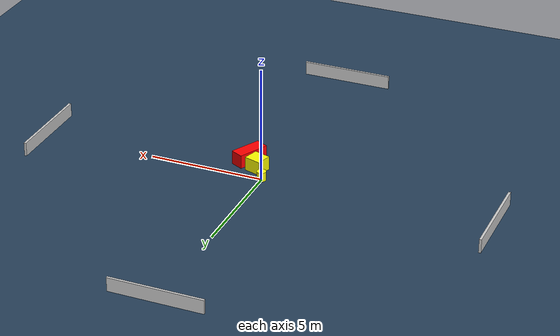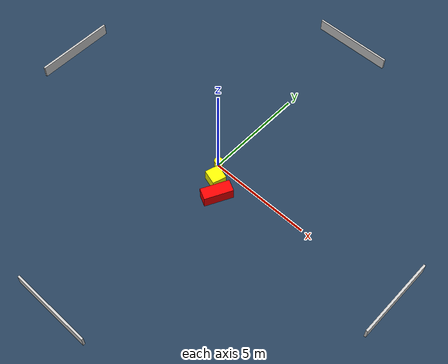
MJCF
<?xml version="1.0" ?>
<mujoco model="generated_environment">
  <option timestep="0.01" integrator="RK4" cone="elliptic"/>
  <default>
    <geom density="1"/>
  </default>
  <asset>
    <texture builtin="gradient" height="3072" name="skybox" rgb1="0.3 0.5 0.7" rgb2="0 0 0" type="skybox" width="512"/>
    <texture builtin="checker" height="300" name="groundplane" rgb1="0.2 0.3 0.4" rgb2="0.1 0.2 0.3" type="2d" width="300"/>
    <material name="groundplane" reflectance="0.2" texrepeat="5 5" texture="groundplane"/>
  </asset>
  <worldbody>
    <light dir="0 0 -1" directional="true" pos="0 0 1.5"/>
    <geom condim="3" friction="0.5 0.005 0.001" material="groundplane" name="floor" pos="0 0 0" size="0 0 0.05" type="plane"/>
    <body name="walls">
      <geom name="wall_1" condim="4" pos="-10.0 0.0 0.3" rgba="0.800000011920929 0.800000011920929 0.800000011920929 1.0" size="0.05 2.0 0.3" type="box"/>
      <geom name="wall_2" condim="4" pos="10.0 0.0 0.3" rgba="0.800000011920929 0.800000011920929 0.800000011920929 1.0" size="0.05 2.0 0.3" type="box"/>
      <geom name="wall_3" condim="4" pos="0.0 -10.0 0.3" rgba="0.800000011920929 0.800000011920929 0.800000011920929 1.0" size="2.0 0.05 0.3" type="box"/>
      <geom name="wall_4" condim="4" pos="0.0 10.0 0.3" rgba="0.800000011920929 0.800000011920929 0.800000011920929 1.0" size="2.0 0.05 0.3" type="box"/>
    </body>
    <body name="robot">
      <joint name="joint_x" type="slide" pos="0 0 0" axis="1 0 0"/>
      <joint name="joint_y" type="slide" pos="0 0 0" axis="0 1 0"/>
      <geom name="robot" type="cylinder" pos="0.0 0.0 0.2" size="0.2 0.2 0.0" mass="5.0" friction="1.0 0.005 0.0001" condim="4" rgba="1.0 1.0 0.0 1.0"/>
    </body>
    <body name="obstacle_1_movable">
      <geom name="obstacle_1_movable" condim="4" pos="0.500442109333392 -0.7225992800624557 0.3" euler="0 0 162.84037858887305" friction="0.0 0.005 0.001" rgba="1.0 1.0 0.0 1.0" size="0.3664678741656441 0.34201840234451286 0.3" type="box" mass="0.1"/>
      <joint type="free"/>
    </body>
    <body name="obstacle_2_static">
      <geom name="obstacle_2_static" condim="4" pos="1.1013734237848885 -1.2879794474000188 0.3" euler="0 0 152.92683088452335" friction="0.0 0.005 0.001" rgba="1.0 0.0 0.0 1.0" size="0.29368574227272476 0.6999841261678319 0.3" type="box"/>
    </body>
  </worldbody>
  <actuator>
    <motor name="actuator_x" joint="joint_x" gear="1" ctrlrange="-1 1"/>
    <motor name="actuator_y" joint="joint_y" gear="1" ctrlrange="-1 1"/>
  </actuator>
</mujoco>
